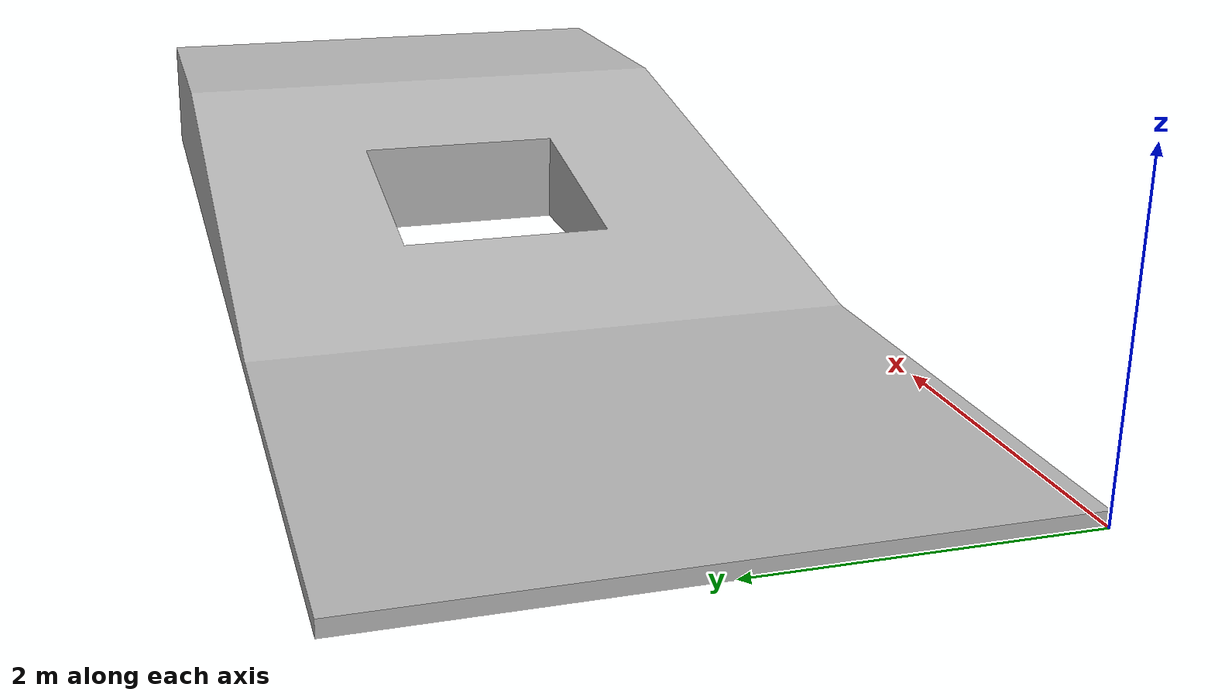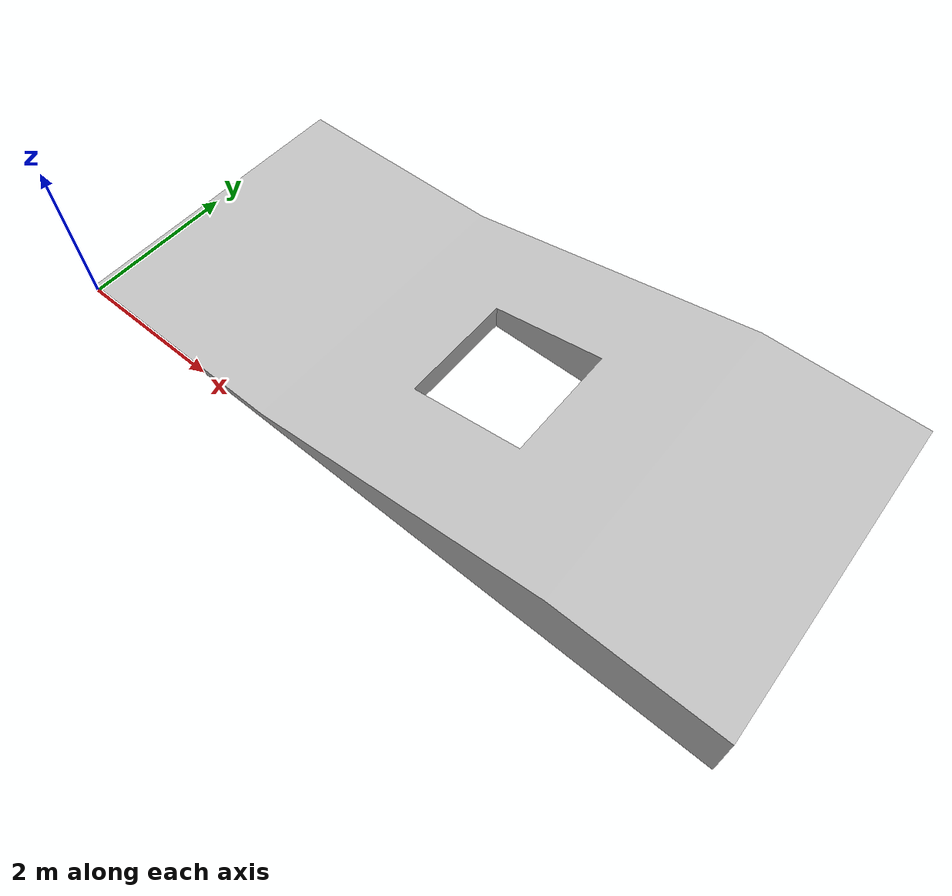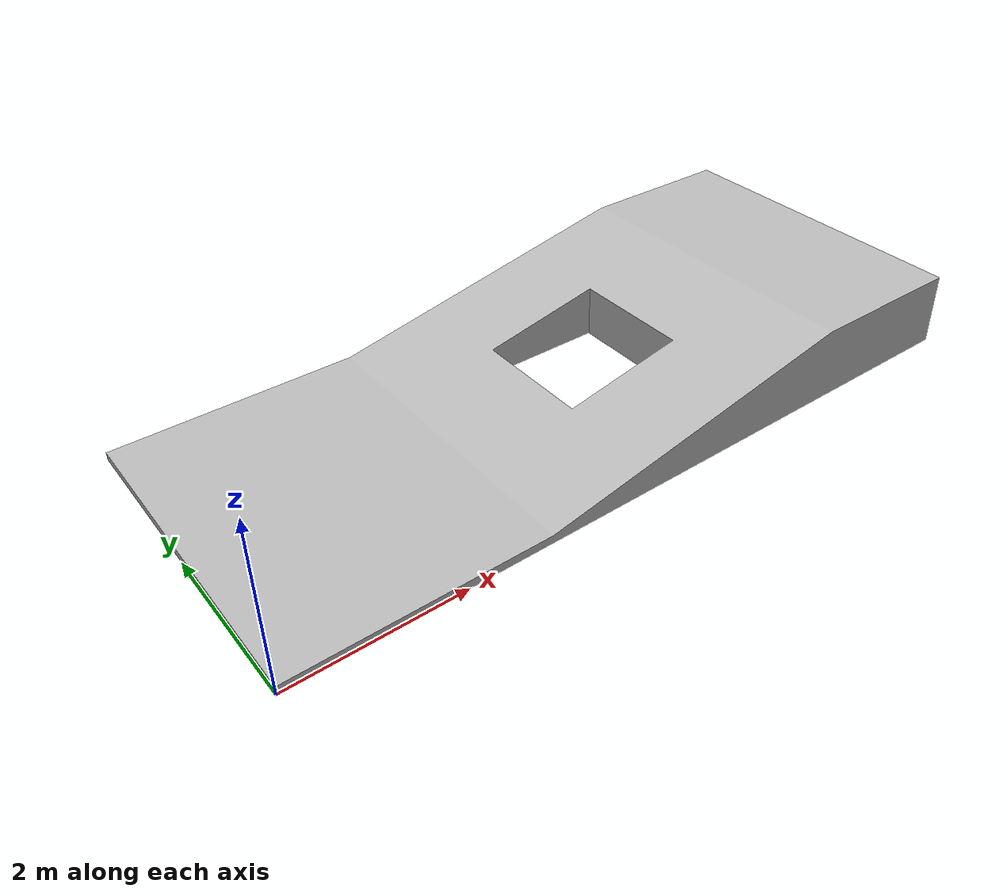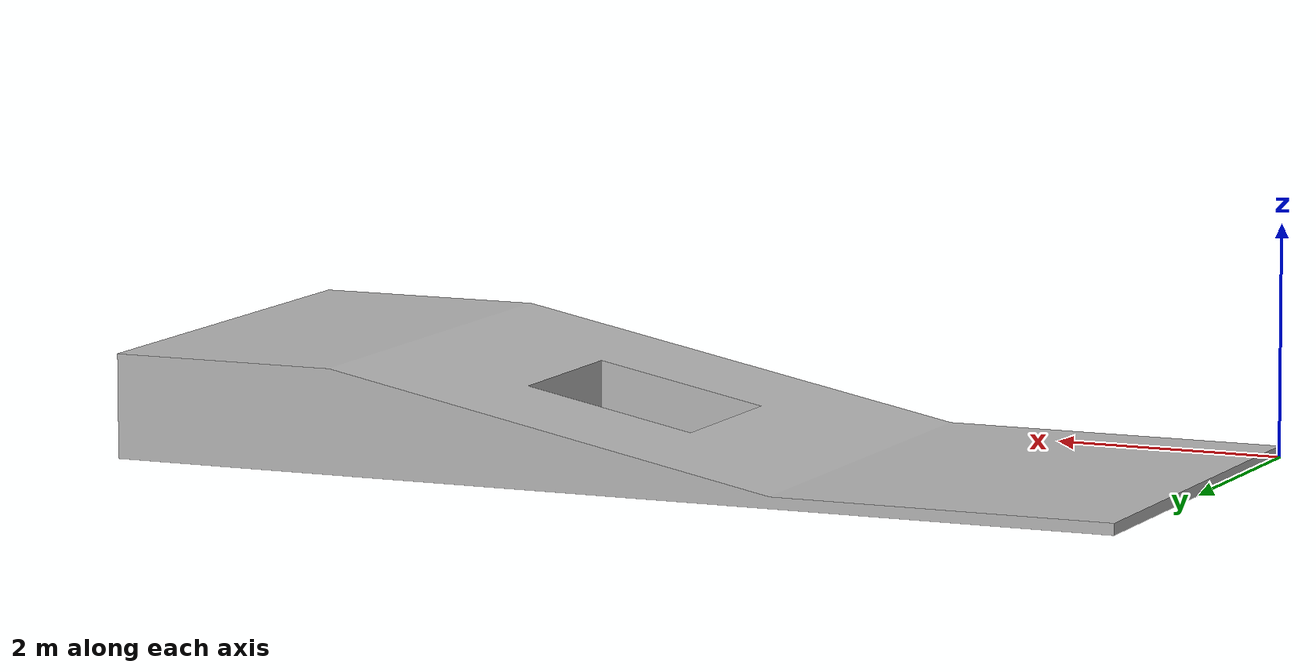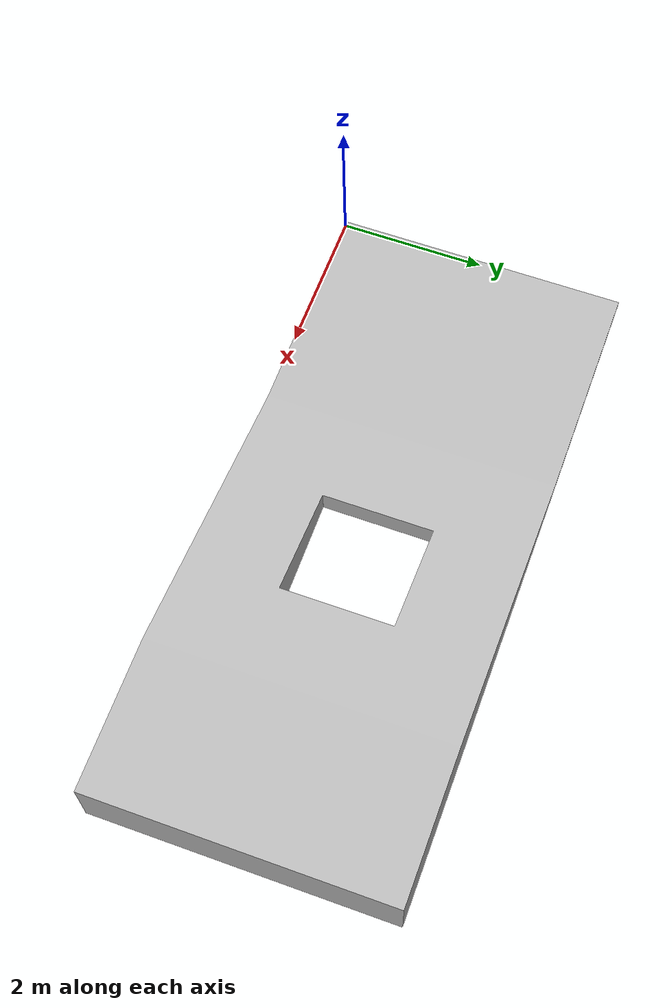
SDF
<?xml version="1.0"?>
<sdf version='1.6'>
    <model name="slope_20_hole">
      <static>true</static>
      <link name="body">
        <visual name="visual">
          <geometry>
            <mesh><uri>meshes/slope_20_hole.stl</uri></mesh>
          </geometry>
        </visual>
        <collision name="collision">
          <geometry>
            <mesh><uri>meshes/slope_20_hole.stl</uri></mesh>
          </geometry>
          <surface>
            <friction>
              <ode>
                <mu>100</mu>
                <mu2>100</mu2>
              </ode>
            </friction>
          </surface>
        </collision>
      </link>
    </model>
</sdf>
